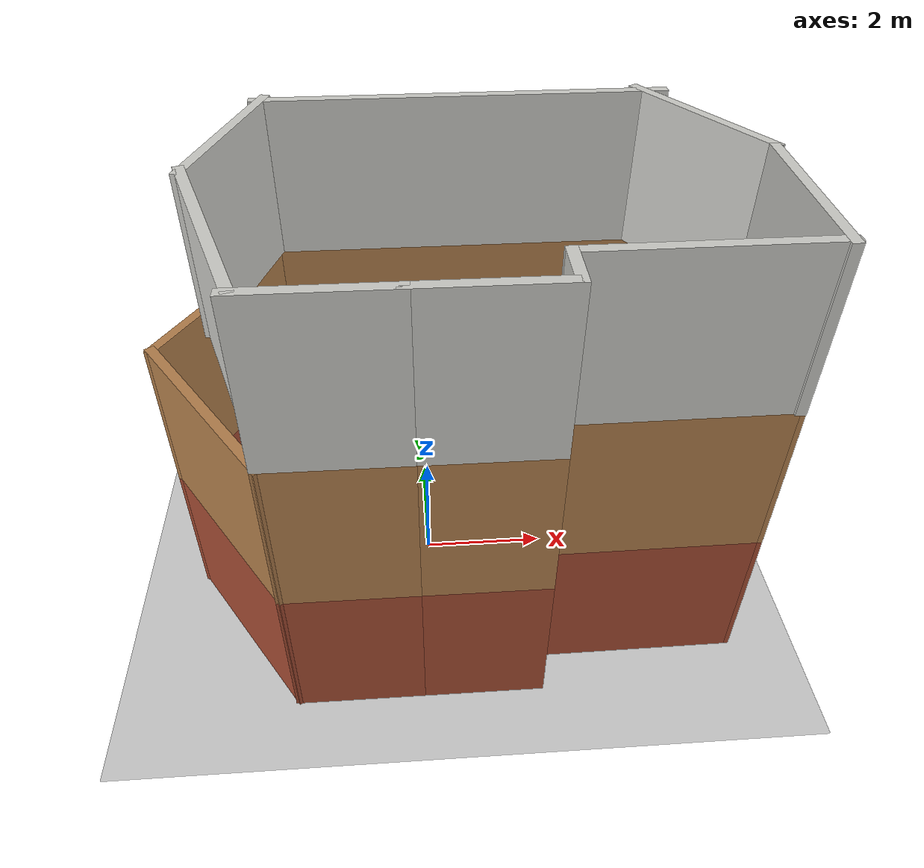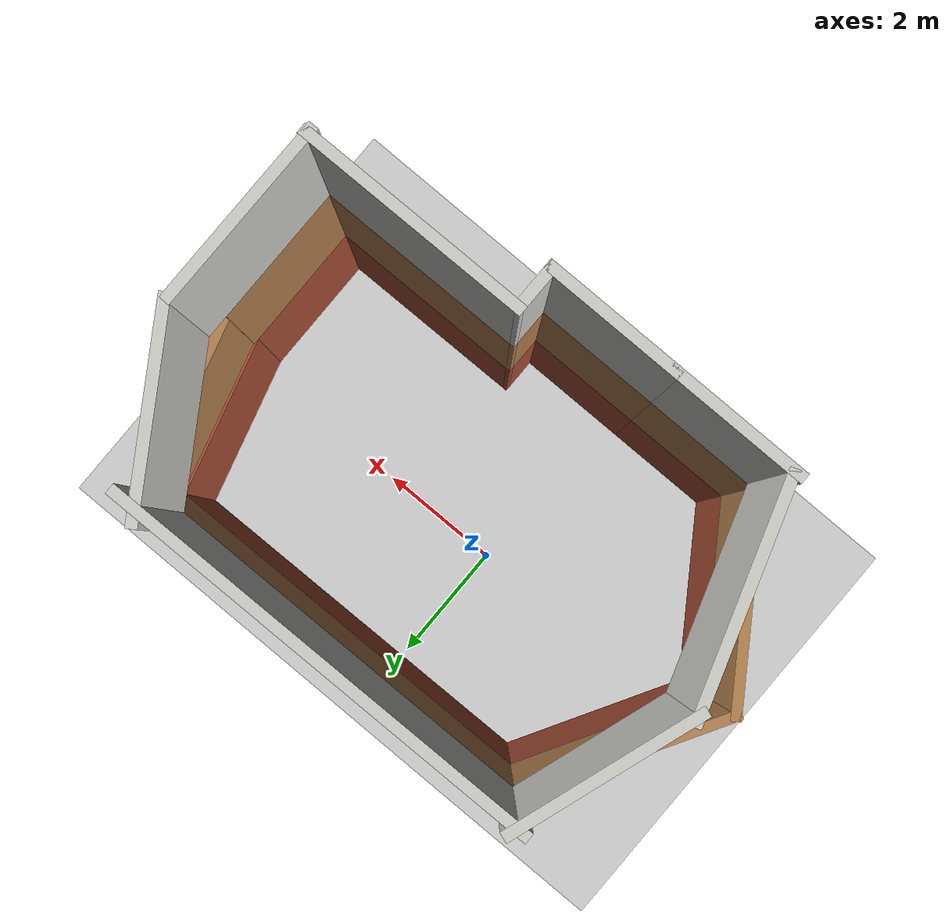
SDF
<sdf version="1.6">
 <world name="default">
  <light name="sun" type="directional">
   <pose>0 0 10 0 -0 0</pose>
   <diffuse>0.8 0.8 0.8 1</diffuse>
   <specular>0.2 0.2 0.2 1</specular>
   <attenuation>
    <range>1000</range>
    <constant>0.9</constant>
    <linear>0.01</linear>
    <quadratic>0.001</quadratic>
   </attenuation>
   <direction>-0.5 0.1 -0.9</direction>
  </light>
  <model name="ground_plane">
   <static>1</static>
   <link name="link">
    <collision name="collision">
     <geometry><plane><normal>0 0 1</normal><size>100 100</size></plane></geometry>
     <surface><friction><ode><mu>100</mu><mu2>50</mu2></ode></friction></surface>
    </collision>
    <visual name="visual">
     <cast_shadows>0</cast_shadows>
     <geometry><plane><normal>0 0 1</normal><size>100 100</size></plane></geometry>
     <material>
      <script><uri>file://media/materials/scripts/gazebo.material</uri><name>Gazebo/Grey</name></script>
     </material>
    </visual>
   </link>
  </model>
  <gravity>0 0 -9.8</gravity>
  <magnetic_field>6e-06 2.3e-05 -4.2e-05</magnetic_field>
  <atmosphere type="adiabatic"/>
  <physics name="default_physics" default="0" type="ode">
   <max_step_size>0.001</max_step_size>
   <real_time_factor>1</real_time_factor>
   <real_time_update_rate>1000</real_time_update_rate>
  </physics>
  <scene><ambient>0.4 0.4 0.4 1</ambient><background>0.7 0.7 0.7 1</background><shadows>1</shadows></scene>
  <spherical_coordinates>
   <surface_model>EARTH_WGS84</surface_model>
   <latitude_deg>0</latitude_deg>
   <longitude_deg>0</longitude_deg>
   <elevation>0</elevation>
   <heading_deg>0</heading_deg>
  </spherical_coordinates>
  <model name="Tower">
   <link name="Wall_1">
    <pose>-0.728435 -2.60934 0 0 -0 0</pose>
    <visual name="Wall_1_Visual">
     <pose>0 0 1.25 0 -0 0</pose>
     <geometry><box><size>0.15 0.15 2.5</size></box></geometry>
     <material>
      <script><uri>file://media/materials/scripts/gazebo.material</uri><name>Gazebo/Grey</name></script>
      <ambient>1 1 1 1</ambient>
      <shader type="pixel"/>
      <diffuse>0.7 0.7 0.7 1</diffuse>
      <specular>0.01 0.01 0.01 1</specular>
      <emissive>0 0 0 1</emissive>
     </material>
     <meta><layer>0</layer></meta>
    </visual>
    <collision name="Wall_1_Collision">
     <pose>0 0 1.25 0 -0 0</pose>
     <geometry><box><size>0.15 0.15 2.5</size></box></geometry>
     <surface>
      <friction>
       <ode><mu>1</mu><mu2>1</mu2><fdir1>0 0 0</fdir1><slip1>0</slip1><slip2>0</slip2></ode>
       <torsional>
        <coefficient>1</coefficient>
        <patch_radius>0</patch_radius>
        <surface_radius>0</surface_radius>
        <use_patch_radius>1</use_patch_radius>
        <ode><slip>0</slip></ode>
       </torsional>
      </friction>
      <bounce><restitution_coefficient>0</restitution_coefficient><threshold>1e+06</threshold></bounce>
      <contact>
       <collide_without_contact>0</collide_without_contact>
       <collide_without_contact_bitmask>1</collide_without_contact_bitmask>
       <collide_bitmask>1</collide_bitmask>
       <ode>
        <soft_cfm>0</soft_cfm>
        <soft_erp>0.2</soft_erp>
        <kp>1e+13</kp>
        <kd>1</kd>
        <max_vel>0.01</max_vel>
        <min_depth>0</min_depth>
       </ode>
       <bullet>
        <split_impulse>1</split_impulse>
        <split_impulse_penetration_threshold>-0.01</split_impulse_penetration_threshold>
        <soft_cfm>0</soft_cfm>
        <soft_erp>0.2</soft_erp>
        <kp>1e+13</kp>
        <kd>1</kd>
       </bullet>
      </contact>
     </surface>
    </collision>
   </link>
   <link name="Wall_10">
    <pose>0.196565 -2.60934 0 0 -0 3.14159</pose>
    <visual name="Wall_10_Visual">
     <pose>0 0 1.25 0 -0 0</pose>
     <geometry><box><size>2 0.15 2.5</size></box></geometry>
     <material>
      <script><uri>file://media/materials/scripts/gazebo.material</uri><name>Gazebo/Bricks</name></script>
      <ambient>1 1 1 1</ambient>
      <shader type="pixel"/>
      <diffuse>1 1 1 1</diffuse>
      <specular>0.2 0.2 0.2 1</specular>
      <emissive>0 0 0 1</emissive>
     </material>
     <meta><layer>0</layer></meta>
    </visual>
    <collision name="Wall_10_Collision">
     <pose>0 0 1.25 0 -0 0</pose>
     <geometry><box><size>2 0.15 2.5</size></box></geometry>
     <surface>
      <friction>
       <ode><mu>1</mu><mu2>1</mu2><fdir1>0 0 0</fdir1><slip1>0</slip1><slip2>0</slip2></ode>
       <torsional>
        <coefficient>1</coefficient>
        <patch_radius>0</patch_radius>
        <surface_radius>0</surface_radius>
        <use_patch_radius>1</use_patch_radius>
        <ode><slip>0</slip></ode>
       </torsional>
      </friction>
      <bounce><restitution_coefficient>0</restitution_coefficient><threshold>1e+06</threshold></bounce>
      <contact>
       <collide_without_contact>0</collide_without_contact>
       <collide_without_contact_bitmask>1</collide_without_contact_bitmask>
       <collide_bitmask>1</collide_bitmask>
       <ode>
        <soft_cfm>0</soft_cfm>
        <soft_erp>0.2</soft_erp>
        <kp>1e+13</kp>
        <kd>1</kd>
        <max_vel>0.01</max_vel>
        <min_depth>0</min_depth>
       </ode>
       <bullet>
        <split_impulse>1</split_impulse>
        <split_impulse_penetration_threshold>-0.01</split_impulse_penetration_threshold>
        <soft_cfm>0</soft_cfm>
        <soft_erp>0.2</soft_erp>
        <kp>1e+13</kp>
        <kd>1</kd>
       </bullet>
      </contact>
     </surface>
    </collision>
   </link>
   <link name="Wall_12">
    <pose>-0.728435 -2.60934 2.5 0 -0 0</pose>
    <visual name="Wall_12_Visual">
     <pose>0 0 1.25 0 -0 0</pose>
     <geometry><box><size>0.15 0.15 2.5</size></box></geometry>
     <material>
      <script><uri>file://media/materials/scripts/gazebo.material</uri><name>Gazebo/Grey</name></script>
      <ambient>1 1 1 1</ambient>
      <shader type="pixel"/>
      <diffuse>0.7 0.7 0.7 1</diffuse>
      <specular>0.01 0.01 0.01 1</specular>
      <emissive>0 0 0 1</emissive>
     </material>
     <meta><layer>1</layer></meta>
    </visual>
    <collision name="Wall_12_Collision">
     <pose>0 0 1.25 0 -0 0</pose>
     <geometry><box><size>0.15 0.15 2.5</size></box></geometry>
     <surface>
      <friction>
       <ode><mu>1</mu><mu2>1</mu2><fdir1>0 0 0</fdir1><slip1>0</slip1><slip2>0</slip2></ode>
       <torsional>
        <coefficient>1</coefficient>
        <patch_radius>0</patch_radius>
        <surface_radius>0</surface_radius>
        <use_patch_radius>1</use_patch_radius>
        <ode><slip>0</slip></ode>
       </torsional>
      </friction>
      <bounce><restitution_coefficient>0</restitution_coefficient><threshold>1e+06</threshold></bounce>
      <contact>
       <collide_without_contact>0</collide_without_contact>
       <collide_without_contact_bitmask>1</collide_without_contact_bitmask>
       <collide_bitmask>1</collide_bitmask>
       <ode>
        <soft_cfm>0</soft_cfm>
        <soft_erp>0.2</soft_erp>
        <kp>1e+13</kp>
        <kd>1</kd>
        <max_vel>0.01</max_vel>
        <min_depth>0</min_depth>
       </ode>
       <bullet>
        <split_impulse>1</split_impulse>
        <split_impulse_penetration_threshold>-0.01</split_impulse_penetration_threshold>
        <soft_cfm>0</soft_cfm>
        <soft_erp>0.2</soft_erp>
        <kp>1e+13</kp>
        <kd>1</kd>
       </bullet>
      </contact>
     </surface>
    </collision>
   </link>
   <link name="Wall_13">
    <pose>-1.65343 -2.60934 2.5 0 -0 3.14159</pose>
    <visual name="Wall_13_Visual">
     <pose>0 0 1.25 0 -0 0</pose>
     <geometry><box><size>2 0.15 2.5</size></box></geometry>
     <material>
      <script><uri>file://media/materials/scripts/gazebo.material</uri><name>Gazebo/Wood</name></script>
      <ambient>1 1 1 1</ambient>
      <shader type="pixel"/>
      <diffuse>1 1 1 1</diffuse>
      <specular>0.2 0.2 0.2 1</specular>
      <emissive>0 0 0 1</emissive>
     </material>
     <meta><layer>1</layer></meta>
    </visual>
    <collision name="Wall_13_Collision">
     <pose>0 0 1.25 0 -0 0</pose>
     <geometry><box><size>2 0.15 2.5</size></box></geometry>
     <surface>
      <friction>
       <ode><mu>1</mu><mu2>1</mu2><fdir1>0 0 0</fdir1><slip1>0</slip1><slip2>0</slip2></ode>
       <torsional>
        <coefficient>1</coefficient>
        <patch_radius>0</patch_radius>
        <surface_radius>0</surface_radius>
        <use_patch_radius>1</use_patch_radius>
        <ode><slip>0</slip></ode>
       </torsional>
      </friction>
      <bounce><restitution_coefficient>0</restitution_coefficient><threshold>1e+06</threshold></bounce>
      <contact>
       <collide_without_contact>0</collide_without_contact>
       <collide_without_contact_bitmask>1</collide_without_contact_bitmask>
       <collide_bitmask>1</collide_bitmask>
       <ode>
        <soft_cfm>0</soft_cfm>
        <soft_erp>0.2</soft_erp>
        <kp>1e+13</kp>
        <kd>1</kd>
        <max_vel>0.01</max_vel>
        <min_depth>0</min_depth>
       </ode>
       <bullet>
        <split_impulse>1</split_impulse>
        <split_impulse_penetration_threshold>-0.01</split_impulse_penetration_threshold>
        <soft_cfm>0</soft_cfm>
        <soft_erp>0.2</soft_erp>
        <kp>1e+13</kp>
        <kd>1</kd>
       </bullet>
      </contact>
     </surface>
    </collision>
   </link>
   <link name="Wall_14">
    <pose>-3.43343 -1.35777 2.5 0 -0 2.17011</pose>
    <visual name="Wall_14_Visual">
     <pose>0 0 1.25 0 -0 0</pose>
     <geometry><box><size>3.18147 0.15 2.5</size></box></geometry>
     <material>
      <script><uri>file://media/materials/scripts/gazebo.material</uri><name>Gazebo/Wood</name></script>
      <ambient>1 1 1 1</ambient>
      <shader type="pixel"/>
      <diffuse>1 1 1 1</diffuse>
      <specular>0.2 0.2 0.2 1</specular>
      <emissive>0 0 0 1</emissive>
     </material>
     <meta><layer>1</layer></meta>
    </visual>
    <collision name="Wall_14_Collision">
     <pose>0 0 1.25 0 -0 0</pose>
     <geometry><box><size>3.18147 0.15 2.5</size></box></geometry>
     <surface>
      <friction>
       <ode><mu>1</mu><mu2>1</mu2><fdir1>0 0 0</fdir1><slip1>0</slip1><slip2>0</slip2></ode>
       <torsional>
        <coefficient>1</coefficient>
        <patch_radius>0</patch_radius>
        <surface_radius>0</surface_radius>
        <use_patch_radius>1</use_patch_radius>
        <ode><slip>0</slip></ode>
       </torsional>
      </friction>
      <bounce><restitution_coefficient>0</restitution_coefficient><threshold>1e+06</threshold></bounce>
      <contact>
       <collide_without_contact>0</collide_without_contact>
       <collide_without_contact_bitmask>1</collide_without_contact_bitmask>
       <collide_bitmask>1</collide_bitmask>
       <ode>
        <soft_cfm>0</soft_cfm>
        <soft_erp>0.2</soft_erp>
        <kp>1e+13</kp>
        <kd>1</kd>
        <max_vel>0.01</max_vel>
        <min_depth>0</min_depth>
       </ode>
       <bullet>
        <split_impulse>1</split_impulse>
        <split_impulse_penetration_threshold>-0.01</split_impulse_penetration_threshold>
        <soft_cfm>0</soft_cfm>
        <soft_erp>0.2</soft_erp>
        <kp>1e+13</kp>
        <kd>1</kd>
       </bullet>
      </contact>
     </surface>
    </collision>
   </link>
   <link name="Wall_15">
    <pose>-3.51342 1.23615 2.5 0 -0 1.0472</pose>
    <visual name="Wall_15_Visual">
     <pose>0 0 1.25 0 -0 0</pose>
     <geometry><box><size>3.25 0.15 2.5</size></box></geometry>
     <material>
      <script><uri>file://media/materials/scripts/gazebo.material</uri><name>Gazebo/Wood</name></script>
      <ambient>1 1 1 1</ambient>
      <shader type="pixel"/>
      <diffuse>1 1 1 1</diffuse>
      <specular>0.2 0.2 0.2 1</specular>
      <emissive>0 0 0 1</emissive>
     </material>
     <meta><layer>1</layer></meta>
    </visual>
    <collision name="Wall_15_Collision">
     <pose>0 0 1.25 0 -0 0</pose>
     <geometry><box><size>3.25 0.15 2.5</size></box></geometry>
     <surface>
      <friction>
       <ode><mu>1</mu><mu2>1</mu2><fdir1>0 0 0</fdir1><slip1>0</slip1><slip2>0</slip2></ode>
       <torsional>
        <coefficient>1</coefficient>
        <patch_radius>0</patch_radius>
        <surface_radius>0</surface_radius>
        <use_patch_radius>1</use_patch_radius>
        <ode><slip>0</slip></ode>
       </torsional>
      </friction>
      <bounce><restitution_coefficient>0</restitution_coefficient><threshold>1e+06</threshold></bounce>
      <contact>
       <collide_without_contact>0</collide_without_contact>
       <collide_without_contact_bitmask>1</collide_without_contact_bitmask>
       <collide_bitmask>1</collide_bitmask>
       <ode>
        <soft_cfm>0</soft_cfm>
        <soft_erp>0.2</soft_erp>
        <kp>1e+13</kp>
        <kd>1</kd>
        <max_vel>0.01</max_vel>
        <min_depth>0</min_depth>
       </ode>
       <bullet>
        <split_impulse>1</split_impulse>
        <split_impulse_penetration_threshold>-0.01</split_impulse_penetration_threshold>
        <soft_cfm>0</soft_cfm>
        <soft_erp>0.2</soft_erp>
        <kp>1e+13</kp>
        <kd>1</kd>
       </bullet>
      </contact>
     </surface>
    </collision>
   </link>
   <link name="Wall_16">
    <pose>0.424736 2.60579 2.5 0 -0 0.006806</pose>
    <visual name="Wall_16_Visual">
     <pose>0 0 1.25 0 -0 0</pose>
     <geometry><box><size>6.50222 0.15 2.5</size></box></geometry>
     <material>
      <script><uri>file://media/materials/scripts/gazebo.material</uri><name>Gazebo/Wood</name></script>
      <ambient>1 1 1 1</ambient>
      <shader type="pixel"/>
      <diffuse>1 1 1 1</diffuse>
      <specular>0.2 0.2 0.2 1</specular>
      <emissive>0 0 0 1</emissive>
     </material>
     <meta><layer>1</layer></meta>
    </visual>
    <collision name="Wall_16_Collision">
     <pose>0 0 1.25 0 -0 0</pose>
     <geometry><box><size>6.50222 0.15 2.5</size></box></geometry>
     <surface>
      <friction>
       <ode><mu>1</mu><mu2>1</mu2><fdir1>0 0 0</fdir1><slip1>0</slip1><slip2>0</slip2></ode>
       <torsional>
        <coefficient>1</coefficient>
        <patch_radius>0</patch_radius>
        <surface_radius>0</surface_radius>
        <use_patch_radius>1</use_patch_radius>
        <ode><slip>0</slip></ode>
       </torsional>
      </friction>
      <bounce><restitution_coefficient>0</restitution_coefficient><threshold>1e+06</threshold></bounce>
      <contact>
       <collide_without_contact>0</collide_without_contact>
       <collide_without_contact_bitmask>1</collide_without_contact_bitmask>
       <collide_bitmask>1</collide_bitmask>
       <ode>
        <soft_cfm>0</soft_cfm>
        <soft_erp>0.2</soft_erp>
        <kp>1e+13</kp>
        <kd>1</kd>
        <max_vel>0.01</max_vel>
        <min_depth>0</min_depth>
       </ode>
       <bullet>
        <split_impulse>1</split_impulse>
        <split_impulse_penetration_threshold>-0.01</split_impulse_penetration_threshold>
        <soft_cfm>0</soft_cfm>
        <soft_erp>0.2</soft_erp>
        <kp>1e+13</kp>
        <kd>1</kd>
       </bullet>
      </contact>
     </surface>
    </collision>
   </link>
   <link name="Wall_17">
    <pose>3.97428 1.42282 2.14437 0 0 -1.309</pose>
    <visual name="Wall_17_Visual">
     <pose>0 0 1.25 0 -0 0</pose>
     <geometry><box><size>2.75 0.15 2.5</size></box></geometry>
     <material>
      <script><uri>file://media/materials/scripts/gazebo.material</uri><name>Gazebo/Wood</name></script>
      <ambient>1 1 1 1</ambient>
      <shader type="pixel"/>
      <diffuse>1 1 1 1</diffuse>
      <specular>0.2 0.2 0.2 1</specular>
      <emissive>0 0 0 1</emissive>
     </material>
     <meta><layer>1</layer></meta>
    </visual>
    <collision name="Wall_17_Collision">
     <pose>0 0 1.25 0 -0 0</pose>
     <geometry><box><size>2.75 0.15 2.5</size></box></geometry>
     <surface>
      <friction>
       <ode><mu>1</mu><mu2>1</mu2><fdir1>0 0 0</fdir1><slip1>0</slip1><slip2>0</slip2></ode>
       <torsional>
        <coefficient>1</coefficient>
        <patch_radius>0</patch_radius>
        <surface_radius>0</surface_radius>
        <use_patch_radius>1</use_patch_radius>
        <ode><slip>0</slip></ode>
       </torsional>
      </friction>
      <bounce><restitution_coefficient>0</restitution_coefficient><threshold>1e+06</threshold></bounce>
      <contact>
       <collide_without_contact>0</collide_without_contact>
       <collide_without_contact_bitmask>1</collide_without_contact_bitmask>
       <collide_bitmask>1</collide_bitmask>
       <ode>
        <soft_cfm>0</soft_cfm>
        <soft_erp>0.2</soft_erp>
        <kp>1e+13</kp>
        <kd>1</kd>
        <max_vel>0.01</max_vel>
        <min_depth>0</min_depth>
       </ode>
       <bullet>
        <split_impulse>1</split_impulse>
        <split_impulse_penetration_threshold>-0.01</split_impulse_penetration_threshold>
        <soft_cfm>0</soft_cfm>
        <soft_erp>0.2</soft_erp>
        <kp>1e+13</kp>
        <kd>1</kd>
       </bullet>
      </contact>
     </surface>
    </collision>
   </link>
   <link name="Wall_18">
    <pose>4.28658 -0.939685 2.5 0 0 -1.5708</pose>
    <visual name="Wall_18_Visual">
     <pose>0 0 1.25 0 -0 0</pose>
     <geometry><box><size>2.25 0.15 2.5</size></box></geometry>
     <material>
      <script><uri>file://media/materials/scripts/gazebo.material</uri><name>Gazebo/Wood</name></script>
      <ambient>1 1 1 1</ambient>
      <shader type="pixel"/>
      <diffuse>1 1 1 1</diffuse>
      <specular>0.2 0.2 0.2 1</specular>
      <emissive>0 0 0 1</emissive>
     </material>
     <meta><layer>1</layer></meta>
    </visual>
    <collision name="Wall_18_Collision">
     <pose>0 0 1.25 0 -0 0</pose>
     <geometry><box><size>2.25 0.15 2.5</size></box></geometry>
     <surface>
      <friction>
       <ode><mu>1</mu><mu2>1</mu2><fdir1>0 0 0</fdir1><slip1>0</slip1><slip2>0</slip2></ode>
       <torsional>
        <coefficient>1</coefficient>
        <patch_radius>0</patch_radius>
        <surface_radius>0</surface_radius>
        <use_patch_radius>1</use_patch_radius>
        <ode><slip>0</slip></ode>
       </torsional>
      </friction>
      <bounce><restitution_coefficient>0</restitution_coefficient><threshold>1e+06</threshold></bounce>
      <contact>
       <collide_without_contact>0</collide_without_contact>
       <collide_without_contact_bitmask>1</collide_without_contact_bitmask>
       <collide_bitmask>1</collide_bitmask>
       <ode>
        <soft_cfm>0</soft_cfm>
        <soft_erp>0.2</soft_erp>
        <kp>1e+13</kp>
        <kd>1</kd>
        <max_vel>0.01</max_vel>
        <min_depth>0</min_depth>
       </ode>
       <bullet>
        <split_impulse>1</split_impulse>
        <split_impulse_penetration_threshold>-0.01</split_impulse_penetration_threshold>
        <soft_cfm>0</soft_cfm>
        <soft_erp>0.2</soft_erp>
        <kp>1e+13</kp>
        <kd>1</kd>
       </bullet>
      </contact>
     </surface>
    </collision>
   </link>
   <link name="Wall_19">
    <pose>2.70408 -1.99951 2.5 0 0 -3.13538</pose>
    <visual name="Wall_19_Visual">
     <pose>0 0 1.25 0 -0 0</pose>
     <geometry><box><size>3.31508 0.15 2.5</size></box></geometry>
     <material>
      <script><uri>file://media/materials/scripts/gazebo.material</uri><name>Gazebo/Wood</name></script>
      <ambient>1 1 1 1</ambient>
      <shader type="pixel"/>
      <diffuse>1 1 1 1</diffuse>
      <specular>0.2 0.2 0.2 1</specular>
      <emissive>0 0 0 1</emissive>
     </material>
     <meta><layer>1</layer></meta>
    </visual>
    <collision name="Wall_19_Collision">
     <pose>0 0 1.25 0 -0 0</pose>
     <geometry><box><size>3.31508 0.15 2.5</size></box></geometry>
     <surface>
      <friction>
       <ode><mu>1</mu><mu2>1</mu2><fdir1>0 0 0</fdir1><slip1>0</slip1><slip2>0</slip2></ode>
       <torsional>
        <coefficient>1</coefficient>
        <patch_radius>0</patch_radius>
        <surface_radius>0</surface_radius>
        <use_patch_radius>1</use_patch_radius>
        <ode><slip>0</slip></ode>
       </torsional>
      </friction>
      <bounce><restitution_coefficient>0</restitution_coefficient><threshold>1e+06</threshold></bounce>
      <contact>
       <collide_without_contact>0</collide_without_contact>
       <collide_without_contact_bitmask>1</collide_without_contact_bitmask>
       <collide_bitmask>1</collide_bitmask>
       <ode>
        <soft_cfm>0</soft_cfm>
        <soft_erp>0.2</soft_erp>
        <kp>1e+13</kp>
        <kd>1</kd>
        <max_vel>0.01</max_vel>
        <min_depth>0</min_depth>
       </ode>
       <bullet>
        <split_impulse>1</split_impulse>
        <split_impulse_penetration_threshold>-0.01</split_impulse_penetration_threshold>
        <soft_cfm>0</soft_cfm>
        <soft_erp>0.2</soft_erp>
        <kp>1e+13</kp>
        <kd>1</kd>
       </bullet>
      </contact>
     </surface>
    </collision>
   </link>
   <link name="Wall_2">
    <pose>-1.65343 -2.60934 0 0 -0 3.14159</pose>
    <visual name="Wall_2_Visual">
     <pose>0 0 1.25 0 -0 0</pose>
     <geometry><box><size>2 0.15 2.5</size></box></geometry>
     <material>
      <script><uri>file://media/materials/scripts/gazebo.material</uri><name>Gazebo/Bricks</name></script>
      <ambient>1 1 1 1</ambient>
      <shader type="pixel"/>
      <diffuse>1 1 1 1</diffuse>
      <specular>0.2 0.2 0.2 1</specular>
      <emissive>0 0 0 1</emissive>
     </material>
     <meta><layer>0</layer></meta>
    </visual>
    <collision name="Wall_2_Collision">
     <pose>0 0 1.25 0 -0 0</pose>
     <geometry><box><size>2 0.15 2.5</size></box></geometry>
     <surface>
      <friction>
       <ode><mu>1</mu><mu2>1</mu2><fdir1>0 0 0</fdir1><slip1>0</slip1><slip2>0</slip2></ode>
       <torsional>
        <coefficient>1</coefficient>
        <patch_radius>0</patch_radius>
        <surface_radius>0</surface_radius>
        <use_patch_radius>1</use_patch_radius>
        <ode><slip>0</slip></ode>
       </torsional>
      </friction>
      <bounce><restitution_coefficient>0</restitution_coefficient><threshold>1e+06</threshold></bounce>
      <contact>
       <collide_without_contact>0</collide_without_contact>
       <collide_without_contact_bitmask>1</collide_without_contact_bitmask>
       <collide_bitmask>1</collide_bitmask>
       <ode>
        <soft_cfm>0</soft_cfm>
        <soft_erp>0.2</soft_erp>
        <kp>1e+13</kp>
        <kd>1</kd>
        <max_vel>0.01</max_vel>
        <min_depth>0</min_depth>
       </ode>
       <bullet>
        <split_impulse>1</split_impulse>
        <split_impulse_penetration_threshold>-0.01</split_impulse_penetration_threshold>
        <soft_cfm>0</soft_cfm>
        <soft_erp>0.2</soft_erp>
        <kp>1e+13</kp>
        <kd>1</kd>
       </bullet>
      </contact>
     </surface>
    </collision>
   </link>
   <link name="Wall_20">
    <pose>1.12156 -2.30934 2.5 0 0 -1.5708</pose>
    <visual name="Wall_20_Visual">
     <pose>0 0 1.25 0 -0 0</pose>
     <geometry><box><size>0.75 0.15 2.5</size></box></geometry>
     <material>
      <script><uri>file://media/materials/scripts/gazebo.material</uri><name>Gazebo/Wood</name></script>
      <ambient>1 1 1 1</ambient>
      <shader type="pixel"/>
      <diffuse>1 1 1 1</diffuse>
      <specular>0.2 0.2 0.2 1</specular>
      <emissive>0 0 0 1</emissive>
     </material>
     <meta><layer>1</layer></meta>
    </visual>
    <collision name="Wall_20_Collision">
     <pose>0 0 1.25 0 -0 0</pose>
     <geometry><box><size>0.75 0.15 2.5</size></box></geometry>
     <surface>
      <friction>
       <ode><mu>1</mu><mu2>1</mu2><fdir1>0 0 0</fdir1><slip1>0</slip1><slip2>0</slip2></ode>
       <torsional>
        <coefficient>1</coefficient>
        <patch_radius>0</patch_radius>
        <surface_radius>0</surface_radius>
        <use_patch_radius>1</use_patch_radius>
        <ode><slip>0</slip></ode>
       </torsional>
      </friction>
      <bounce><restitution_coefficient>0</restitution_coefficient><threshold>1e+06</threshold></bounce>
      <contact>
       <collide_without_contact>0</collide_without_contact>
       <collide_without_contact_bitmask>1</collide_without_contact_bitmask>
       <collide_bitmask>1</collide_bitmask>
       <ode>
        <soft_cfm>0</soft_cfm>
        <soft_erp>0.2</soft_erp>
        <kp>1e+13</kp>
        <kd>1</kd>
        <max_vel>0.01</max_vel>
        <min_depth>0</min_depth>
       </ode>
       <bullet>
        <split_impulse>1</split_impulse>
        <split_impulse_penetration_threshold>-0.01</split_impulse_penetration_threshold>
        <soft_cfm>0</soft_cfm>
        <soft_erp>0.2</soft_erp>
        <kp>1e+13</kp>
        <kd>1</kd>
       </bullet>
      </contact>
     </surface>
    </collision>
   </link>
   <link name="Wall_21">
    <pose>0.196565 -2.60934 2.5 0 -0 3.14159</pose>
    <visual name="Wall_21_Visual">
     <pose>0 0 1.25 0 -0 0</pose>
     <geometry><box><size>2 0.15 2.5</size></box></geometry>
     <material>
      <script><uri>file://media/materials/scripts/gazebo.material</uri><name>Gazebo/Wood</name></script>
      <ambient>1 1 1 1</ambient>
      <shader type="pixel"/>
      <diffuse>1 1 1 1</diffuse>
      <specular>0.2 0.2 0.2 1</specular>
      <emissive>0 0 0 1</emissive>
     </material>
     <meta><layer>1</layer></meta>
    </visual>
    <collision name="Wall_21_Collision">
     <pose>0 0 1.25 0 -0 0</pose>
     <geometry><box><size>2 0.15 2.5</size></box></geometry>
     <surface>
      <friction>
       <ode><mu>1</mu><mu2>1</mu2><fdir1>0 0 0</fdir1><slip1>0</slip1><slip2>0</slip2></ode>
       <torsional>
        <coefficient>1</coefficient>
        <patch_radius>0</patch_radius>
        <surface_radius>0</surface_radius>
        <use_patch_radius>1</use_patch_radius>
        <ode><slip>0</slip></ode>
       </torsional>
      </friction>
      <bounce><restitution_coefficient>0</restitution_coefficient><threshold>1e+06</threshold></bounce>
      <contact>
       <collide_without_contact>0</collide_without_contact>
       <collide_without_contact_bitmask>1</collide_without_contact_bitmask>
       <collide_bitmask>1</collide_bitmask>
       <ode>
        <soft_cfm>0</soft_cfm>
        <soft_erp>0.2</soft_erp>
        <kp>1e+13</kp>
        <kd>1</kd>
        <max_vel>0.01</max_vel>
        <min_depth>0</min_depth>
       </ode>
       <bullet>
        <split_impulse>1</split_impulse>
        <split_impulse_penetration_threshold>-0.01</split_impulse_penetration_threshold>
        <soft_cfm>0</soft_cfm>
        <soft_erp>0.2</soft_erp>
        <kp>1e+13</kp>
        <kd>1</kd>
       </bullet>
      </contact>
     </surface>
    </collision>
   </link>
   <link name="Wall_22">
    <pose>-0.728435 -2.60934 5 0 -0 0</pose>
    <visual name="Wall_22_Visual">
     <pose>0 0 1.25 0 -0 0</pose>
     <geometry><box><size>0.15 0.15 2.5</size></box></geometry>
     <material>
      <script><uri>file://media/materials/scripts/gazebo.material</uri><name>Gazebo/Grey</name></script>
      <ambient>1 1 1 1</ambient>
      <shader type="pixel"/>
      <diffuse>0.7 0.7 0.7 1</diffuse>
      <specular>0.01 0.01 0.01 1</specular>
      <emissive>0 0 0 1</emissive>
     </material>
     <meta><layer>2</layer></meta>
    </visual>
    <collision name="Wall_22_Collision">
     <pose>0 0 1.25 0 -0 0</pose>
     <geometry><box><size>0.15 0.15 2.5</size></box></geometry>
     <surface>
      <friction>
       <ode><mu>1</mu><mu2>1</mu2><fdir1>0 0 0</fdir1><slip1>0</slip1><slip2>0</slip2></ode>
       <torsional>
        <coefficient>1</coefficient>
        <patch_radius>0</patch_radius>
        <surface_radius>0</surface_radius>
        <use_patch_radius>1</use_patch_radius>
        <ode><slip>0</slip></ode>
       </torsional>
      </friction>
      <bounce><restitution_coefficient>0</restitution_coefficient><threshold>1e+06</threshold></bounce>
      <contact>
       <collide_without_contact>0</collide_without_contact>
       <collide_without_contact_bitmask>1</collide_without_contact_bitmask>
       <collide_bitmask>1</collide_bitmask>
       <ode>
        <soft_cfm>0</soft_cfm>
        <soft_erp>0.2</soft_erp>
        <kp>1e+13</kp>
        <kd>1</kd>
        <max_vel>0.01</max_vel>
        <min_depth>0</min_depth>
       </ode>
       <bullet>
        <split_impulse>1</split_impulse>
        <split_impulse_penetration_threshold>-0.01</split_impulse_penetration_threshold>
        <soft_cfm>0</soft_cfm>
        <soft_erp>0.2</soft_erp>
        <kp>1e+13</kp>
        <kd>1</kd>
       </bullet>
      </contact>
     </surface>
    </collision>
   </link>
   <link name="Wall_23">
    <pose>-1.65343 -2.60934 5 0 -0 3.14159</pose>
    <visual name="Wall_23_Visual">
     <pose>0 0 1.25 0 -0 0</pose>
     <geometry><box><size>2 0.15 2.5</size></box></geometry>
     <material>
      <script><uri>file://media/materials/scripts/gazebo.material</uri><name>Gazebo/CeilingTiled</name></script>
      <ambient>1 1 1 1</ambient>
      <shader type="pixel"/>
      <diffuse>1 1 1 1</diffuse>
      <specular>0 0 0 1</specular>
      <emissive>0 0 0 1</emissive>
     </material>
     <meta><layer>2</layer></meta>
    </visual>
    <collision name="Wall_23_Collision">
     <pose>0 0 1.25 0 -0 0</pose>
     <geometry><box><size>2 0.15 2.5</size></box></geometry>
     <surface>
      <friction>
       <ode><mu>1</mu><mu2>1</mu2><fdir1>0 0 0</fdir1><slip1>0</slip1><slip2>0</slip2></ode>
       <torsional>
        <coefficient>1</coefficient>
        <patch_radius>0</patch_radius>
        <surface_radius>0</surface_radius>
        <use_patch_radius>1</use_patch_radius>
        <ode><slip>0</slip></ode>
       </torsional>
      </friction>
      <bounce><restitution_coefficient>0</restitution_coefficient><threshold>1e+06</threshold></bounce>
      <contact>
       <collide_without_contact>0</collide_without_contact>
       <collide_without_contact_bitmask>1</collide_without_contact_bitmask>
       <collide_bitmask>1</collide_bitmask>
       <ode>
        <soft_cfm>0</soft_cfm>
        <soft_erp>0.2</soft_erp>
        <kp>1e+13</kp>
        <kd>1</kd>
        <max_vel>0.01</max_vel>
        <min_depth>0</min_depth>
       </ode>
       <bullet>
        <split_impulse>1</split_impulse>
        <split_impulse_penetration_threshold>-0.01</split_impulse_penetration_threshold>
        <soft_cfm>0</soft_cfm>
        <soft_erp>0.2</soft_erp>
        <kp>1e+13</kp>
        <kd>1</kd>
       </bullet>
      </contact>
     </surface>
    </collision>
   </link>
   <link name="Wall_24">
    <pose>-2.99934 -1.13113 5 0 -0 1.89469</pose>
    <inertial>
     <inertia><ixx>0</ixx><ixy>0</ixy><ixz>0</ixz><iyy>0</iyy><iyz>0</iyz><izz>0</izz></inertia>
     <mass>0</mass>
    </inertial>
    <visual name="Wall_24_Visual">
     <pose>0 0 1.25 0 -0 0</pose>
     <geometry><box><size>3.17646 0.15 2.5</size></box></geometry>
     <material>
      <script><uri>file://media/materials/scripts/gazebo.material</uri><name>Gazebo/CeilingTiled</name></script>
      <ambient>1 1 1 1</ambient>
      <shader type="pixel"/>
      <diffuse>1 1 1 1</diffuse>
      <specular>0 0 0 1</specular>
      <emissive>0 0 0 1</emissive>
     </material>
     <meta><layer>2</layer></meta>
    </visual>
    <collision name="Wall_24_Collision">
     <pose>0 0 1.25 0 -0 0</pose>
     <geometry><box><size>3.17646 0.15 2.5</size></box></geometry>
     <surface>
      <friction>
       <ode><mu>1</mu><mu2>1</mu2><fdir1>0 0 0</fdir1><slip1>0</slip1><slip2>0</slip2></ode>
       <torsional>
        <coefficient>1</coefficient>
        <patch_radius>0</patch_radius>
        <surface_radius>0</surface_radius>
        <use_patch_radius>1</use_patch_radius>
        <ode><slip>0</slip></ode>
       </torsional>
      </friction>
      <bounce><restitution_coefficient>0</restitution_coefficient><threshold>1e+06</threshold></bounce>
      <contact>
       <collide_without_contact>0</collide_without_contact>
       <collide_without_contact_bitmask>1</collide_without_contact_bitmask>
       <collide_bitmask>1</collide_bitmask>
       <ode>
        <soft_cfm>0</soft_cfm>
        <soft_erp>0.2</soft_erp>
        <kp>1e+13</kp>
        <kd>1</kd>
        <max_vel>0.01</max_vel>
        <min_depth>0</min_depth>
       </ode>
       <bullet>
        <split_impulse>1</split_impulse>
        <split_impulse_penetration_threshold>-0.01</split_impulse_penetration_threshold>
        <soft_cfm>0</soft_cfm>
        <soft_erp>0.2</soft_erp>
        <kp>1e+13</kp>
        <kd>1</kd>
       </bullet>
      </contact>
     </surface>
    </collision>
   </link>
   <link name="Wall_25">
    <pose>-3.06678 1.43565 5 0 -0 1.2495</pose>
    <visual name="Wall_25_Visual">
     <pose>0 0 1.25 0 -0 0</pose>
     <geometry><box><size>2.75 0.15 2.5</size></box></geometry>
     <material>
      <script><uri>file://media/materials/scripts/gazebo.material</uri><name>Gazebo/CeilingTiled</name></script>
      <ambient>1 1 1 1</ambient>
      <shader type="pixel"/>
      <diffuse>1 1 1 1</diffuse>
      <specular>0 0 0 1</specular>
      <emissive>0 0 0 1</emissive>
     </material>
     <meta><layer>2</layer></meta>
    </visual>
    <collision name="Wall_25_Collision">
     <pose>0 0 1.25 0 -0 0</pose>
     <geometry><box><size>2.75 0.15 2.5</size></box></geometry>
     <surface>
      <friction>
       <ode><mu>1</mu><mu2>1</mu2><fdir1>0 0 0</fdir1><slip1>0</slip1><slip2>0</slip2></ode>
       <torsional>
        <coefficient>1</coefficient>
        <patch_radius>0</patch_radius>
        <surface_radius>0</surface_radius>
        <use_patch_radius>1</use_patch_radius>
        <ode><slip>0</slip></ode>
       </torsional>
      </friction>
      <bounce><restitution_coefficient>0</restitution_coefficient><threshold>1e+06</threshold></bounce>
      <contact>
       <collide_without_contact>0</collide_without_contact>
       <collide_without_contact_bitmask>1</collide_without_contact_bitmask>
       <collide_bitmask>1</collide_bitmask>
       <ode>
        <soft_cfm>0</soft_cfm>
        <soft_erp>0.2</soft_erp>
        <kp>1e+13</kp>
        <kd>1</kd>
        <max_vel>0.01</max_vel>
        <min_depth>0</min_depth>
       </ode>
       <bullet>
        <split_impulse>1</split_impulse>
        <split_impulse_penetration_threshold>-0.01</split_impulse_penetration_threshold>
        <soft_cfm>0</soft_cfm>
        <soft_erp>0.2</soft_erp>
        <kp>1e+13</kp>
        <kd>1</kd>
       </bullet>
      </contact>
     </surface>
    </collision>
   </link>
   <link name="Wall_26">
    <pose>0.249595 2.56983 5 0 -0 0.004482</pose>
    <inertial>
     <inertia><ixx>0</ixx><ixy>0</ixy><ixz>0</ixz><iyy>0</iyy><iyz>0</iyz><izz>0</izz></inertia>
     <mass>0</mass>
    </inertial>
    <visual name="Wall_26_Visual">
     <pose>0 0 1.25 0 -0 0</pose>
     <geometry><box><size>6.24084 0.15 2.5</size></box></geometry>
     <material>
      <script><uri>file://media/materials/scripts/gazebo.material</uri><name>Gazebo/CeilingTiled</name></script>
      <ambient>1 1 1 1</ambient>
      <shader type="pixel"/>
      <diffuse>1 1 1 1</diffuse>
      <specular>0 0 0 1</specular>
      <emissive>0 0 0 1</emissive>
     </material>
     <meta><layer>2</layer></meta>
    </visual>
    <collision name="Wall_26_Collision">
     <pose>0 0 1.25 0 -0 0</pose>
     <geometry><box><size>6.24084 0.15 2.5</size></box></geometry>
     <surface>
      <friction>
       <ode><mu>1</mu><mu2>1</mu2><fdir1>0 0 0</fdir1><slip1>0</slip1><slip2>0</slip2></ode>
       <torsional>
        <coefficient>1</coefficient>
        <patch_radius>0</patch_radius>
        <surface_radius>0</surface_radius>
        <use_patch_radius>1</use_patch_radius>
        <ode><slip>0</slip></ode>
       </torsional>
      </friction>
      <bounce><restitution_coefficient>0</restitution_coefficient><threshold>1e+06</threshold></bounce>
      <contact>
       <collide_without_contact>0</collide_without_contact>
       <collide_without_contact_bitmask>1</collide_without_contact_bitmask>
       <collide_bitmask>1</collide_bitmask>
       <ode>
        <soft_cfm>0</soft_cfm>
        <soft_erp>0.2</soft_erp>
        <kp>1e+13</kp>
        <kd>1</kd>
        <max_vel>0.01</max_vel>
        <min_depth>0</min_depth>
       </ode>
       <bullet>
        <split_impulse>1</split_impulse>
        <split_impulse_penetration_threshold>-0.01</split_impulse_penetration_threshold>
        <soft_cfm>0</soft_cfm>
        <soft_erp>0.2</soft_erp>
        <kp>1e+13</kp>
        <kd>1</kd>
       </bullet>
      </contact>
     </surface>
    </collision>
   </link>
   <link name="Wall_27">
    <pose>3.61122 1.61677 5 0 0 -1.01013</pose>
    <visual name="Wall_27_Visual">
     <pose>0 0 1.25 0 -0 0</pose>
     <geometry><box><size>2.75 0.15 2.5</size></box></geometry>
     <material>
      <script><uri>file://media/materials/scripts/gazebo.material</uri><name>Gazebo/CeilingTiled</name></script>
      <ambient>1 1 1 1</ambient>
      <shader type="pixel"/>
      <diffuse>1 1 1 1</diffuse>
      <specular>0 0 0 1</specular>
      <emissive>0 0 0 1</emissive>
     </material>
     <meta><layer>2</layer></meta>
    </visual>
    <collision name="Wall_27_Collision">
     <pose>0 0 1.25 0 -0 0</pose>
     <geometry><box><size>2.75 0.15 2.5</size></box></geometry>
     <surface>
      <friction>
       <ode><mu>1</mu><mu2>1</mu2><fdir1>0 0 0</fdir1><slip1>0</slip1><slip2>0</slip2></ode>
       <torsional>
        <coefficient>1</coefficient>
        <patch_radius>0</patch_radius>
        <surface_radius>0</surface_radius>
        <use_patch_radius>1</use_patch_radius>
        <ode><slip>0</slip></ode>
       </torsional>
      </friction>
      <bounce><restitution_coefficient>0</restitution_coefficient><threshold>1e+06</threshold></bounce>
      <contact>
       <collide_without_contact>0</collide_without_contact>
       <collide_without_contact_bitmask>1</collide_without_contact_bitmask>
       <collide_bitmask>1</collide_bitmask>
       <ode>
        <soft_cfm>0</soft_cfm>
        <soft_erp>0.2</soft_erp>
        <kp>1e+13</kp>
        <kd>1</kd>
        <max_vel>0.01</max_vel>
        <min_depth>0</min_depth>
       </ode>
       <bullet>
        <split_impulse>1</split_impulse>
        <split_impulse_penetration_threshold>-0.01</split_impulse_penetration_threshold>
        <soft_cfm>0</soft_cfm>
        <soft_erp>0.2</soft_erp>
        <kp>1e+13</kp>
        <kd>1</kd>
       </bullet>
      </contact>
     </surface>
    </collision>
   </link>
   <link name="Wall_28">
    <pose>4.27271 -0.779691 5 0 0 -1.57556</pose>
    <inertial>
     <inertia><ixx>0</ixx><ixy>0</ixy><ixz>0</ixz><iyy>0</iyy><iyz>0</iyz><izz>0</izz></inertia>
     <mass>0</mass>
    </inertial>
    <visual name="Wall_28_Visual">
     <pose>0 0 1.25 0 -0 0</pose>
     <geometry><box><size>2.65213 0.15 2.5</size></box></geometry>
     <material>
      <script><uri>file://media/materials/scripts/gazebo.material</uri><name>Gazebo/CeilingTiled</name></script>
      <ambient>1 1 1 1</ambient>
      <shader type="pixel"/>
      <diffuse>1 1 1 1</diffuse>
      <specular>0 0 0 1</specular>
      <emissive>0 0 0 1</emissive>
     </material>
     <meta><layer>2</layer></meta>
    </visual>
    <collision name="Wall_28_Collision">
     <pose>0 0 1.25 0 -0 0</pose>
     <geometry><box><size>2.65213 0.15 2.5</size></box></geometry>
     <surface>
      <friction>
       <ode><mu>1</mu><mu2>1</mu2><fdir1>0 0 0</fdir1><slip1>0</slip1><slip2>0</slip2></ode>
       <torsional>
        <coefficient>1</coefficient>
        <patch_radius>0</patch_radius>
        <surface_radius>0</surface_radius>
        <use_patch_radius>1</use_patch_radius>
        <ode><slip>0</slip></ode>
       </torsional>
      </friction>
      <bounce><restitution_coefficient>0</restitution_coefficient><threshold>1e+06</threshold></bounce>
      <contact>
       <collide_without_contact>0</collide_without_contact>
       <collide_without_contact_bitmask>1</collide_without_contact_bitmask>
       <collide_bitmask>1</collide_bitmask>
       <ode>
        <soft_cfm>0</soft_cfm>
        <soft_erp>0.2</soft_erp>
        <kp>1e+13</kp>
        <kd>1</kd>
        <max_vel>0.01</max_vel>
        <min_depth>0</min_depth>
       </ode>
       <bullet>
        <split_impulse>1</split_impulse>
        <split_impulse_penetration_threshold>-0.01</split_impulse_penetration_threshold>
        <soft_cfm>0</soft_cfm>
        <soft_erp>0.2</soft_erp>
        <kp>1e+13</kp>
        <kd>1</kd>
       </bullet>
      </contact>
     </surface>
    </collision>
   </link>
   <link name="Wall_29">
    <pose>2.70408 -1.99951 5 0 0 -3.13538</pose>
    <visual name="Wall_29_Visual">
     <pose>0 0 1.25 0 -0 0</pose>
     <geometry><box><size>3.31508 0.15 2.5</size></box></geometry>
     <material>
      <script><uri>file://media/materials/scripts/gazebo.material</uri><name>Gazebo/CeilingTiled</name></script>
      <ambient>1 1 1 1</ambient>
      <shader type="pixel"/>
      <diffuse>1 1 1 1</diffuse>
      <specular>0 0 0 1</specular>
      <emissive>0 0 0 1</emissive>
     </material>
     <meta><layer>2</layer></meta>
    </visual>
    <collision name="Wall_29_Collision">
     <pose>0 0 1.25 0 -0 0</pose>
     <geometry><box><size>3.31508 0.15 2.5</size></box></geometry>
     <surface>
      <friction>
       <ode><mu>1</mu><mu2>1</mu2><fdir1>0 0 0</fdir1><slip1>0</slip1><slip2>0</slip2></ode>
       <torsional>
        <coefficient>1</coefficient>
        <patch_radius>0</patch_radius>
        <surface_radius>0</surface_radius>
        <use_patch_radius>1</use_patch_radius>
        <ode><slip>0</slip></ode>
       </torsional>
      </friction>
      <bounce><restitution_coefficient>0</restitution_coefficient><threshold>1e+06</threshold></bounce>
      <contact>
       <collide_without_contact>0</collide_without_contact>
       <collide_without_contact_bitmask>1</collide_without_contact_bitmask>
       <collide_bitmask>1</collide_bitmask>
       <ode>
        <soft_cfm>0</soft_cfm>
        <soft_erp>0.2</soft_erp>
        <kp>1e+13</kp>
        <kd>1</kd>
        <max_vel>0.01</max_vel>
        <min_depth>0</min_depth>
       </ode>
       <bullet>
        <split_impulse>1</split_impulse>
        <split_impulse_penetration_threshold>-0.01</split_impulse_penetration_threshold>
        <soft_cfm>0</soft_cfm>
        <soft_erp>0.2</soft_erp>
        <kp>1e+13</kp>
        <kd>1</kd>
       </bullet>
      </contact>
     </surface>
    </collision>
   </link>
   <link name="Wall_3">
    <pose>-3.43343 -1.35777 0 0 -0 2.17011</pose>
    <visual name="Wall_3_Visual">
     <pose>0 0 1.25 0 -0 0</pose>
     <geometry><box><size>3.18147 0.15 2.5</size></box></geometry>
     <material>
      <script><uri>file://media/materials/scripts/gazebo.material</uri><name>Gazebo/Bricks</name></script>
      <ambient>1 1 1 1</ambient>
      <shader type="pixel"/>
      <diffuse>1 1 1 1</diffuse>
      <specular>0.2 0.2 0.2 1</specular>
      <emissive>0 0 0 1</emissive>
     </material>
     <meta><layer>0</layer></meta>
    </visual>
    <collision name="Wall_3_Collision">
     <pose>0 0 1.25 0 -0 0</pose>
     <geometry><box><size>3.18147 0.15 2.5</size></box></geometry>
     <surface>
      <friction>
       <ode><mu>1</mu><mu2>1</mu2><fdir1>0 0 0</fdir1><slip1>0</slip1><slip2>0</slip2></ode>
       <torsional>
        <coefficient>1</coefficient>
        <patch_radius>0</patch_radius>
        <surface_radius>0</surface_radius>
        <use_patch_radius>1</use_patch_radius>
        <ode><slip>0</slip></ode>
       </torsional>
      </friction>
      <bounce><restitution_coefficient>0</restitution_coefficient><threshold>1e+06</threshold></bounce>
      <contact>
       <collide_without_contact>0</collide_without_contact>
       <collide_without_contact_bitmask>1</collide_without_contact_bitmask>
       <collide_bitmask>1</collide_bitmask>
       <ode>
        <soft_cfm>0</soft_cfm>
        <soft_erp>0.2</soft_erp>
        <kp>1e+13</kp>
        <kd>1</kd>
        <max_vel>0.01</max_vel>
        <min_depth>0</min_depth>
       </ode>
       <bullet>
        <split_impulse>1</split_impulse>
        <split_impulse_penetration_threshold>-0.01</split_impulse_penetration_threshold>
        <soft_cfm>0</soft_cfm>
        <soft_erp>0.2</soft_erp>
        <kp>1e+13</kp>
        <kd>1</kd>
       </bullet>
      </contact>
     </surface>
    </collision>
   </link>
   <link name="Wall_30">
    <pose>1.12156 -2.30934 5 0 0 -1.5708</pose>
    <visual name="Wall_30_Visual">
     <pose>0 0 1.25 0 -0 0</pose>
     <geometry><box><size>0.75 0.15 2.5</size></box></geometry>
     <material>
      <script><uri>file://media/materials/scripts/gazebo.material</uri><name>Gazebo/CeilingTiled</name></script>
      <ambient>1 1 1 1</ambient>
      <shader type="pixel"/>
      <diffuse>1 1 1 1</diffuse>
      <specular>0 0 0 1</specular>
      <emissive>0 0 0 1</emissive>
     </material>
     <meta><layer>2</layer></meta>
    </visual>
    <collision name="Wall_30_Collision">
     <pose>0 0 1.25 0 -0 0</pose>
     <geometry><box><size>0.75 0.15 2.5</size></box></geometry>
     <surface>
      <friction>
       <ode><mu>1</mu><mu2>1</mu2><fdir1>0 0 0</fdir1><slip1>0</slip1><slip2>0</slip2></ode>
       <torsional>
        <coefficient>1</coefficient>
        <patch_radius>0</patch_radius>
        <surface_radius>0</surface_radius>
        <use_patch_radius>1</use_patch_radius>
        <ode><slip>0</slip></ode>
       </torsional>
      </friction>
      <bounce><restitution_coefficient>0</restitution_coefficient><threshold>1e+06</threshold></bounce>
      <contact>
       <collide_without_contact>0</collide_without_contact>
       <collide_without_contact_bitmask>1</collide_without_contact_bitmask>
       <collide_bitmask>1</collide_bitmask>
       <ode>
        <soft_cfm>0</soft_cfm>
        <soft_erp>0.2</soft_erp>
        <kp>1e+13</kp>
        <kd>1</kd>
        <max_vel>0.01</max_vel>
        <min_depth>0</min_depth>
       </ode>
       <bullet>
        <split_impulse>1</split_impulse>
        <split_impulse_penetration_threshold>-0.01</split_impulse_penetration_threshold>
        <soft_cfm>0</soft_cfm>
        <soft_erp>0.2</soft_erp>
        <kp>1e+13</kp>
        <kd>1</kd>
       </bullet>
      </contact>
     </surface>
    </collision>
   </link>
   <link name="Wall_31">
    <pose>0.196565 -2.60934 5 0 -0 3.14159</pose>
    <visual name="Wall_31_Visual">
     <pose>0 0 1.25 0 -0 0</pose>
     <geometry><box><size>2 0.15 2.5</size></box></geometry>
     <material>
      <script><uri>file://media/materials/scripts/gazebo.material</uri><name>Gazebo/CeilingTiled</name></script>
      <ambient>1 1 1 1</ambient>
      <shader type="pixel"/>
      <diffuse>1 1 1 1</diffuse>
      <specular>0 0 0 1</specular>
      <emissive>0 0 0 1</emissive>
     </material>
     <meta><layer>2</layer></meta>
    </visual>
    <collision name="Wall_31_Collision">
     <pose>0 0 1.25 0 -0 0</pose>
     <geometry><box><size>2 0.15 2.5</size></box></geometry>
     <surface>
      <friction>
       <ode><mu>1</mu><mu2>1</mu2><fdir1>0 0 0</fdir1><slip1>0</slip1><slip2>0</slip2></ode>
       <torsional>
        <coefficient>1</coefficient>
        <patch_radius>0</patch_radius>
        <surface_radius>0</surface_radius>
        <use_patch_radius>1</use_patch_radius>
        <ode><slip>0</slip></ode>
       </torsional>
      </friction>
      <bounce><restitution_coefficient>0</restitution_coefficient><threshold>1e+06</threshold></bounce>
      <contact>
       <collide_without_contact>0</collide_without_contact>
       <collide_without_contact_bitmask>1</collide_without_contact_bitmask>
       <collide_bitmask>1</collide_bitmask>
       <ode>
        <soft_cfm>0</soft_cfm>
        <soft_erp>0.2</soft_erp>
        <kp>1e+13</kp>
        <kd>1</kd>
        <max_vel>0.01</max_vel>
        <min_depth>0</min_depth>
       </ode>
       <bullet>
        <split_impulse>1</split_impulse>
        <split_impulse_penetration_threshold>-0.01</split_impulse_penetration_threshold>
        <soft_cfm>0</soft_cfm>
        <soft_erp>0.2</soft_erp>
        <kp>1e+13</kp>
        <kd>1</kd>
       </bullet>
      </contact>
     </surface>
    </collision>
   </link>
   <link name="Wall_4">
    <pose>-3.51342 1.23615 0 0 -0 1.0472</pose>
    <visual name="Wall_4_Visual">
     <pose>0 0 1.25 0 -0 0</pose>
     <geometry><box><size>3.25 0.15 2.5</size></box></geometry>
     <material>
      <script><uri>file://media/materials/scripts/gazebo.material</uri><name>Gazebo/Bricks</name></script>
      <ambient>1 1 1 1</ambient>
      <shader type="pixel"/>
      <diffuse>1 1 1 1</diffuse>
      <specular>0.2 0.2 0.2 1</specular>
      <emissive>0 0 0 1</emissive>
     </material>
     <meta><layer>0</layer></meta>
    </visual>
    <collision name="Wall_4_Collision">
     <pose>0 0 1.25 0 -0 0</pose>
     <geometry><box><size>3.25 0.15 2.5</size></box></geometry>
     <surface>
      <friction>
       <ode><mu>1</mu><mu2>1</mu2><fdir1>0 0 0</fdir1><slip1>0</slip1><slip2>0</slip2></ode>
       <torsional>
        <coefficient>1</coefficient>
        <patch_radius>0</patch_radius>
        <surface_radius>0</surface_radius>
        <use_patch_radius>1</use_patch_radius>
        <ode><slip>0</slip></ode>
       </torsional>
      </friction>
      <bounce><restitution_coefficient>0</restitution_coefficient><threshold>1e+06</threshold></bounce>
      <contact>
       <collide_without_contact>0</collide_without_contact>
       <collide_without_contact_bitmask>1</collide_without_contact_bitmask>
       <collide_bitmask>1</collide_bitmask>
       <ode>
        <soft_cfm>0</soft_cfm>
        <soft_erp>0.2</soft_erp>
        <kp>1e+13</kp>
        <kd>1</kd>
        <max_vel>0.01</max_vel>
        <min_depth>0</min_depth>
       </ode>
       <bullet>
        <split_impulse>1</split_impulse>
        <split_impulse_penetration_threshold>-0.01</split_impulse_penetration_threshold>
        <soft_cfm>0</soft_cfm>
        <soft_erp>0.2</soft_erp>
        <kp>1e+13</kp>
        <kd>1</kd>
       </bullet>
      </contact>
     </surface>
    </collision>
   </link>
   <link name="Wall_5">
    <pose>0.43762 2.60011 0 0 -0 0.006806</pose>
    <visual name="Wall_5_Visual">
     <pose>0 0 1.25 0 -0 0</pose>
     <geometry><box><size>6.50222 0.15 2.5</size></box></geometry>
     <material>
      <script><uri>file://media/materials/scripts/gazebo.material</uri><name>Gazebo/Bricks</name></script>
      <ambient>1 1 1 1</ambient>
      <shader type="pixel"/>
      <diffuse>1 1 1 1</diffuse>
      <specular>0.2 0.2 0.2 1</specular>
      <emissive>0 0 0 1</emissive>
     </material>
     <meta><layer>0</layer></meta>
    </visual>
    <collision name="Wall_5_Collision">
     <pose>0 0 1.25 0 -0 0</pose>
     <geometry><box><size>6.50222 0.15 2.5</size></box></geometry>
     <surface>
      <friction>
       <ode><mu>1</mu><mu2>1</mu2><fdir1>0 0 0</fdir1><slip1>0</slip1><slip2>0</slip2></ode>
       <torsional>
        <coefficient>1</coefficient>
        <patch_radius>0</patch_radius>
        <surface_radius>0</surface_radius>
        <use_patch_radius>1</use_patch_radius>
        <ode><slip>0</slip></ode>
       </torsional>
      </friction>
      <bounce><restitution_coefficient>0</restitution_coefficient><threshold>1e+06</threshold></bounce>
      <contact>
       <collide_without_contact>0</collide_without_contact>
       <collide_without_contact_bitmask>1</collide_without_contact_bitmask>
       <collide_bitmask>1</collide_bitmask>
       <ode>
        <soft_cfm>0</soft_cfm>
        <soft_erp>0.2</soft_erp>
        <kp>1e+13</kp>
        <kd>1</kd>
        <max_vel>0.01</max_vel>
        <min_depth>0</min_depth>
       </ode>
       <bullet>
        <split_impulse>1</split_impulse>
        <split_impulse_penetration_threshold>-0.01</split_impulse_penetration_threshold>
        <soft_cfm>0</soft_cfm>
        <soft_erp>0.2</soft_erp>
        <kp>1e+13</kp>
        <kd>1</kd>
       </bullet>
      </contact>
     </surface>
    </collision>
   </link>
   <link name="Wall_6">
    <pose>3.95012 1.36602 0 0 0 -1.309</pose>
    <visual name="Wall_6_Visual">
     <pose>0 0 1.25 0 -0 0</pose>
     <geometry><box><size>2.75 0.15 2.5</size></box></geometry>
     <material>
      <script><uri>file://media/materials/scripts/gazebo.material</uri><name>Gazebo/Bricks</name></script>
      <ambient>1 1 1 1</ambient>
      <shader type="pixel"/>
      <diffuse>1 1 1 1</diffuse>
      <specular>0.2 0.2 0.2 1</specular>
      <emissive>0 0 0 1</emissive>
     </material>
     <meta><layer>0</layer></meta>
    </visual>
    <collision name="Wall_6_Collision">
     <pose>0 0 1.25 0 -0 0</pose>
     <geometry><box><size>2.75 0.15 2.5</size></box></geometry>
     <surface>
      <friction>
       <ode><mu>1</mu><mu2>1</mu2><fdir1>0 0 0</fdir1><slip1>0</slip1><slip2>0</slip2></ode>
       <torsional>
        <coefficient>1</coefficient>
        <patch_radius>0</patch_radius>
        <surface_radius>0</surface_radius>
        <use_patch_radius>1</use_patch_radius>
        <ode><slip>0</slip></ode>
       </torsional>
      </friction>
      <bounce><restitution_coefficient>0</restitution_coefficient><threshold>1e+06</threshold></bounce>
      <contact>
       <collide_without_contact>0</collide_without_contact>
       <collide_without_contact_bitmask>1</collide_without_contact_bitmask>
       <collide_bitmask>1</collide_bitmask>
       <ode>
        <soft_cfm>0</soft_cfm>
        <soft_erp>0.2</soft_erp>
        <kp>1e+13</kp>
        <kd>1</kd>
        <max_vel>0.01</max_vel>
        <min_depth>0</min_depth>
       </ode>
       <bullet>
        <split_impulse>1</split_impulse>
        <split_impulse_penetration_threshold>-0.01</split_impulse_penetration_threshold>
        <soft_cfm>0</soft_cfm>
        <soft_erp>0.2</soft_erp>
        <kp>1e+13</kp>
        <kd>1</kd>
       </bullet>
      </contact>
     </surface>
    </collision>
   </link>
   <link name="Wall_7">
    <pose>4.28658 -0.939685 0 0 0 -1.5708</pose>
    <visual name="Wall_7_Visual">
     <pose>0 0 1.25 0 -0 0</pose>
     <geometry><box><size>2.25 0.15 2.5</size></box></geometry>
     <material>
      <script><uri>file://media/materials/scripts/gazebo.material</uri><name>Gazebo/Bricks</name></script>
      <ambient>1 1 1 1</ambient>
      <shader type="pixel"/>
      <diffuse>1 1 1 1</diffuse>
      <specular>0.2 0.2 0.2 1</specular>
      <emissive>0 0 0 1</emissive>
     </material>
     <meta><layer>0</layer></meta>
    </visual>
    <collision name="Wall_7_Collision">
     <pose>0 0 1.25 0 -0 0</pose>
     <geometry><box><size>2.25 0.15 2.5</size></box></geometry>
     <surface>
      <friction>
       <ode><mu>1</mu><mu2>1</mu2><fdir1>0 0 0</fdir1><slip1>0</slip1><slip2>0</slip2></ode>
       <torsional>
        <coefficient>1</coefficient>
        <patch_radius>0</patch_radius>
        <surface_radius>0</surface_radius>
        <use_patch_radius>1</use_patch_radius>
        <ode><slip>0</slip></ode>
       </torsional>
      </friction>
      <bounce><restitution_coefficient>0</restitution_coefficient><threshold>1e+06</threshold></bounce>
      <contact>
       <collide_without_contact>0</collide_without_contact>
       <collide_without_contact_bitmask>1</collide_without_contact_bitmask>
       <collide_bitmask>1</collide_bitmask>
       <ode>
        <soft_cfm>0</soft_cfm>
        <soft_erp>0.2</soft_erp>
        <kp>1e+13</kp>
        <kd>1</kd>
        <max_vel>0.01</max_vel>
        <min_depth>0</min_depth>
       </ode>
       <bullet>
        <split_impulse>1</split_impulse>
        <split_impulse_penetration_threshold>-0.01</split_impulse_penetration_threshold>
        <soft_cfm>0</soft_cfm>
        <soft_erp>0.2</soft_erp>
        <kp>1e+13</kp>
        <kd>1</kd>
       </bullet>
      </contact>
     </surface>
    </collision>
   </link>
   <link name="Wall_8">
    <pose>2.70408 -1.99951 0 0 0 -3.13538</pose>
    <visual name="Wall_8_Visual">
     <pose>0 0 1.25 0 -0 0</pose>
     <geometry><box><size>3.31508 0.15 2.5</size></box></geometry>
     <material>
      <script><uri>file://media/materials/scripts/gazebo.material</uri><name>Gazebo/Bricks</name></script>
      <ambient>1 1 1 1</ambient>
      <shader type="pixel"/>
      <diffuse>1 1 1 1</diffuse>
      <specular>0.2 0.2 0.2 1</specular>
      <emissive>0 0 0 1</emissive>
     </material>
     <meta><layer>0</layer></meta>
    </visual>
    <collision name="Wall_8_Collision">
     <pose>0 0 1.25 0 -0 0</pose>
     <geometry><box><size>3.31508 0.15 2.5</size></box></geometry>
     <surface>
      <friction>
       <ode><mu>1</mu><mu2>1</mu2><fdir1>0 0 0</fdir1><slip1>0</slip1><slip2>0</slip2></ode>
       <torsional>
        <coefficient>1</coefficient>
        <patch_radius>0</patch_radius>
        <surface_radius>0</surface_radius>
        <use_patch_radius>1</use_patch_radius>
        <ode><slip>0</slip></ode>
       </torsional>
      </friction>
      <bounce><restitution_coefficient>0</restitution_coefficient><threshold>1e+06</threshold></bounce>
      <contact>
       <collide_without_contact>0</collide_without_contact>
       <collide_without_contact_bitmask>1</collide_without_contact_bitmask>
       <collide_bitmask>1</collide_bitmask>
       <ode>
        <soft_cfm>0</soft_cfm>
        <soft_erp>0.2</soft_erp>
        <kp>1e+13</kp>
        <kd>1</kd>
        <max_vel>0.01</max_vel>
        <min_depth>0</min_depth>
       </ode>
       <bullet>
        <split_impulse>1</split_impulse>
        <split_impulse_penetration_threshold>-0.01</split_impulse_penetration_threshold>
        <soft_cfm>0</soft_cfm>
        <soft_erp>0.2</soft_erp>
        <kp>1e+13</kp>
        <kd>1</kd>
       </bullet>
      </contact>
     </surface>
    </collision>
   </link>
   <link name="Wall_9">
    <pose>1.12156 -2.30934 0 0 0 -1.5708</pose>
    <visual name="Wall_9_Visual">
     <pose>0 0 1.25 0 -0 0</pose>
     <geometry><box><size>0.75 0.15 2.5</size></box></geometry>
     <material>
      <script><uri>file://media/materials/scripts/gazebo.material</uri><name>Gazebo/Bricks</name></script>
      <ambient>1 1 1 1</ambient>
      <shader type="pixel"/>
      <diffuse>1 1 1 1</diffuse>
      <specular>0.2 0.2 0.2 1</specular>
      <emissive>0 0 0 1</emissive>
     </material>
     <meta><layer>0</layer></meta>
    </visual>
    <collision name="Wall_9_Collision">
     <pose>0 0 1.25 0 -0 0</pose>
     <geometry><box><size>0.75 0.15 2.5</size></box></geometry>
     <surface>
      <friction>
       <ode><mu>1</mu><mu2>1</mu2><fdir1>0 0 0</fdir1><slip1>0</slip1><slip2>0</slip2></ode>
       <torsional>
        <coefficient>1</coefficient>
        <patch_radius>0</patch_radius>
        <surface_radius>0</surface_radius>
        <use_patch_radius>1</use_patch_radius>
        <ode><slip>0</slip></ode>
       </torsional>
      </friction>
      <bounce><restitution_coefficient>0</restitution_coefficient><threshold>1e+06</threshold></bounce>
      <contact>
       <collide_without_contact>0</collide_without_contact>
       <collide_without_contact_bitmask>1</collide_without_contact_bitmask>
       <collide_bitmask>1</collide_bitmask>
       <ode>
        <soft_cfm>0</soft_cfm>
        <soft_erp>0.2</soft_erp>
        <kp>1e+13</kp>
        <kd>1</kd>
        <max_vel>0.01</max_vel>
        <min_depth>0</min_depth>
       </ode>
       <bullet>
        <split_impulse>1</split_impulse>
        <split_impulse_penetration_threshold>-0.01</split_impulse_penetration_threshold>
        <soft_cfm>0</soft_cfm>
        <soft_erp>0.2</soft_erp>
        <kp>1e+13</kp>
        <kd>1</kd>
       </bullet>
      </contact>
     </surface>
    </collision>
   </link>
   <static>1</static>
   <pose>0.449961 -0.375842 0 0 -0 0</pose>
  </model>
 </world>
</sdf>
